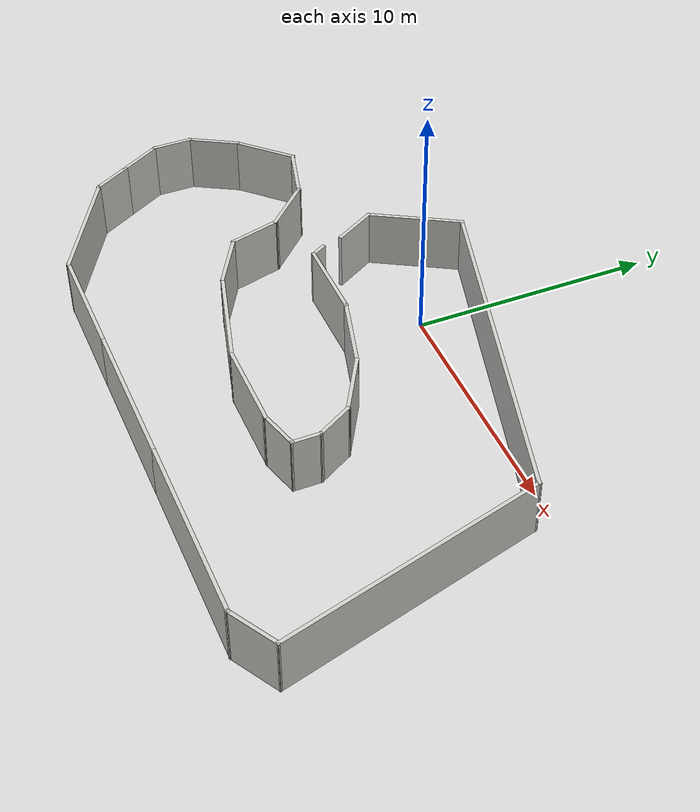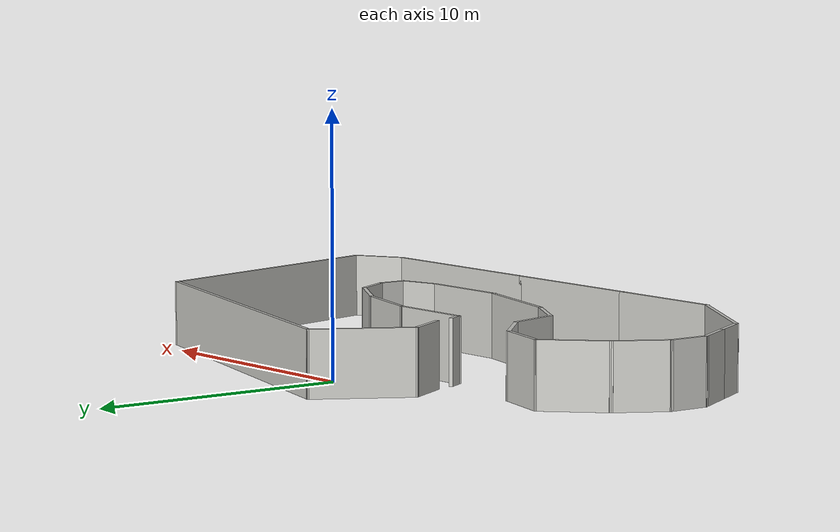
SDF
<?xml version='1.0'?>
<sdf version='1.7'>
  <model name='c-shaped-room-2'>
    <pose>0.960185 -4.80212 0 0 -0 0</pose>
    <link name='Wall_0'>
      <collision name='Wall_0_Collision'>
        <geometry>
          <box>
            <size>0.75 0.15 2.5</size>
          </box>
        </geometry>
        <pose>0 0 1.25 0 -0 0</pose>
      </collision>
      <visual name='Wall_0_Visual'>
        <pose>0 0 1.25 0 -0 0</pose>
        <geometry>
          <box>
            <size>0.75 0.15 2.5</size>
          </box>
        </geometry>
        <material>
          <script>
            <uri>file://media/materials/scripts/gazebo.material</uri>
            <name>Gazebo/CeilingTiled</name>
          </script>
          <ambient>1 1 1 1</ambient>
        </material>
        <meta>
          <layer>0</layer>
        </meta>
      </visual>
      <pose>-4.18018 1.68232 0 0 -0 -1.0472</pose>
    </link>
    <link name='Wall_1'>
      <collision name='Wall_1_Collision'>
        <geometry>
          <box>
            <size>3.5 0.15 2.5</size>
          </box>
        </geometry>
        <pose>0 0 1.25 0 -0 0</pose>
      </collision>
      <visual name='Wall_1_Visual'>
        <pose>0 0 1.25 0 -0 0</pose>
        <geometry>
          <box>
            <size>3.5 0.15 2.5</size>
          </box>
        </geometry>
        <material>
          <script>
            <uri>file://media/materials/scripts/gazebo.material</uri>
            <name>Gazebo/CeilingTiled</name>
          </script>
          <ambient>1 1 1 1</ambient>
        </material>
        <meta>
          <layer>0</layer>
        </meta>
      </visual>
      <pose>-2.35519 1.42251 0 0 -0 0</pose>
    </link>
    <link name='Wall_10'>
      <collision name='Wall_10_Collision'>
        <geometry>
          <box>
            <size>2.25 0.15 2.5</size>
          </box>
        </geometry>
        <pose>0 0 1.25 0 -0 0</pose>
      </collision>
      <visual name='Wall_10_Visual'>
        <pose>0 0 1.25 0 -0 0</pose>
        <geometry>
          <box>
            <size>2.25 0.15 2.5</size>
          </box>
        </geometry>
        <material>
          <script>
            <uri>file://media/materials/scripts/gazebo.material</uri>
            <name>Gazebo/CeilingTiled</name>
          </script>
          <ambient>1 1 1 1</ambient>
        </material>
        <meta>
          <layer>0</layer>
        </meta>
      </visual>
      <pose>-6.28833 -0.264497 0 0 -0 1.8326</pose>
    </link>
    <link name='Wall_11'>
      <collision name='Wall_11_Collision'>
        <geometry>
          <box>
            <size>2.5 0.15 2.5</size>
          </box>
        </geometry>
        <pose>0 0 1.25 0 -0 0</pose>
      </collision>
      <visual name='Wall_11_Visual'>
        <pose>0 0 1.25 0 -0 0</pose>
        <geometry>
          <box>
            <size>2.5 0.15 2.5</size>
          </box>
        </geometry>
        <material>
          <script>
            <uri>file://media/materials/scripts/gazebo.material</uri>
            <name>Gazebo/CeilingTiled</name>
          </script>
          <ambient>1 1 1 1</ambient>
        </material>
        <meta>
          <layer>0</layer>
        </meta>
      </visual>
      <pose>-7.39094 1.58058 0 0 -0 2.35619</pose>
    </link>
    <link name='Wall_12'>
      <collision name='Wall_12_Collision'>
        <geometry>
          <box>
            <size>2.5 0.15 2.5</size>
          </box>
        </geometry>
        <pose>0 0 1.25 0 -0 0</pose>
      </collision>
      <visual name='Wall_12_Visual'>
        <pose>0 0 1.25 0 -0 0</pose>
        <geometry>
          <box>
            <size>2.5 0.15 2.5</size>
          </box>
        </geometry>
        <material>
          <script>
            <uri>file://media/materials/scripts/gazebo.material</uri>
            <name>Gazebo/CeilingTiled</name>
          </script>
          <ambient>1 1 1 1</ambient>
        </material>
        <meta>
          <layer>0</layer>
        </meta>
      </visual>
      <pose>-9.35675 2.71554 0 0 -0 2.87979</pose>
    </link>
    <link name='Wall_13'>
      <collision name='Wall_13_Collision'>
        <geometry>
          <box>
            <size>2.75 0.15 2.5</size>
          </box>
        </geometry>
        <pose>0 0 1.25 0 -0 0</pose>
      </collision>
      <visual name='Wall_13_Visual'>
        <pose>0 0 1.25 0 -0 0</pose>
        <geometry>
          <box>
            <size>2.75 0.15 2.5</size>
          </box>
        </geometry>
        <material>
          <script>
            <uri>file://media/materials/scripts/gazebo.material</uri>
            <name>Gazebo/CeilingTiled</name>
          </script>
          <ambient>1 1 1 1</ambient>
        </material>
        <meta>
          <layer>0</layer>
        </meta>
      </visual>
      <pose>-11.411 2.10041 0 0 -0 -2.35619</pose>
    </link>
    <link name='Wall_14'>
      <collision name='Wall_14_Collision'>
        <geometry>
          <box>
            <size>2.25 0.15 2.5</size>
          </box>
        </geometry>
        <pose>0 0 1.25 0 -0 0</pose>
      </collision>
      <visual name='Wall_14_Visual'>
        <pose>0 0 1.25 0 -0 0</pose>
        <geometry>
          <box>
            <size>2.25 0.15 2.5</size>
          </box>
        </geometry>
        <material>
          <script>
            <uri>file://media/materials/scripts/gazebo.material</uri>
            <name>Gazebo/CeilingTiled</name>
          </script>
          <ambient>1 1 1 1</ambient>
        </material>
        <meta>
          <layer>0</layer>
        </meta>
      </visual>
      <pose>-12.8552 0.271847 0 0 -0 -2.0944</pose>
    </link>
    <link name='Wall_15'>
      <collision name='Wall_15_Collision'>
        <geometry>
          <box>
            <size>1.75 0.15 2.5</size>
          </box>
        </geometry>
        <pose>0 0 1.25 0 -0 0</pose>
      </collision>
      <visual name='Wall_15_Visual'>
        <pose>0 0 1.25 0 -0 0</pose>
        <geometry>
          <box>
            <size>1.75 0.15 2.5</size>
          </box>
        </geometry>
        <material>
          <script>
            <uri>file://media/materials/scripts/gazebo.material</uri>
            <name>Gazebo/CeilingTiled</name>
          </script>
          <ambient>1 1 1 1</ambient>
        </material>
        <meta>
          <layer>0</layer>
        </meta>
      </visual>
      <pose>-13.3802 -1.43748 0 0 -0 -1.5708</pose>
    </link>
    <link name='Wall_16'>
      <collision name='Wall_16_Collision'>
        <geometry>
          <box>
            <size>2 0.15 2.5</size>
          </box>
        </geometry>
        <pose>0 0 1.25 0 -0 0</pose>
      </collision>
      <visual name='Wall_16_Visual'>
        <pose>0 0 1.25 0 -0 0</pose>
        <geometry>
          <box>
            <size>2 0.15 2.5</size>
          </box>
        </geometry>
        <material>
          <script>
            <uri>file://media/materials/scripts/gazebo.material</uri>
            <name>Gazebo/CeilingTiled</name>
          </script>
          <ambient>1 1 1 1</ambient>
        </material>
        <meta>
          <layer>0</layer>
        </meta>
      </visual>
      <pose>-12.9177 -3.03855 0 0 -0 -1.0472</pose>
    </link>
    <link name='Wall_17'>
      <collision name='Wall_17_Collision'>
        <geometry>
          <box>
            <size>1.75 0.15 2.5</size>
          </box>
        </geometry>
        <pose>0 0 1.25 0 -0 0</pose>
      </collision>
      <visual name='Wall_17_Visual'>
        <pose>0 0 1.25 0 -0 0</pose>
        <geometry>
          <box>
            <size>1.75 0.15 2.5</size>
          </box>
        </geometry>
        <material>
          <script>
            <uri>file://media/materials/scripts/gazebo.material</uri>
            <name>Gazebo/CeilingTiled</name>
          </script>
          <ambient>1 1 1 1</ambient>
        </material>
        <meta>
          <layer>0</layer>
        </meta>
      </visual>
      <pose>-12.0552 -4.53245 0 0 -0 -1.0472</pose>
    </link>
    <link name='Wall_18'>
      <collision name='Wall_18_Collision'>
        <geometry>
          <box>
            <size>5.25 0.15 2.5</size>
          </box>
        </geometry>
        <pose>0 0 1.25 0 -0 0</pose>
      </collision>
      <visual name='Wall_18_Visual'>
        <pose>0 0 1.25 0 -0 0</pose>
        <geometry>
          <box>
            <size>5.25 0.15 2.5</size>
          </box>
        </geometry>
        <material>
          <script>
            <uri>file://media/materials/scripts/gazebo.material</uri>
            <name>Gazebo/CeilingTiled</name>
          </script>
          <ambient>1 1 1 1</ambient>
        </material>
        <meta>
          <layer>0</layer>
        </meta>
      </visual>
      <pose>-9.44683 -6.50027 0 0 -0 -0.523599</pose>
    </link>
    <link name='Wall_19'>
      <collision name='Wall_19_Collision'>
        <geometry>
          <box>
            <size>5 0.15 2.5</size>
          </box>
        </geometry>
        <pose>0 0 1.25 0 -0 0</pose>
      </collision>
      <visual name='Wall_19_Visual'>
        <pose>0 0 1.25 0 -0 0</pose>
        <geometry>
          <box>
            <size>5 0.15 2.5</size>
          </box>
        </geometry>
        <material>
          <script>
            <uri>file://media/materials/scripts/gazebo.material</uri>
            <name>Gazebo/CeilingTiled</name>
          </script>
          <ambient>1 1 1 1</ambient>
        </material>
        <meta>
          <layer>0</layer>
        </meta>
      </visual>
      <pose>-4.81346 -7.77527 0 0 -0 0</pose>
    </link>
    <link name='Wall_2'>
      <collision name='Wall_2_Collision'>
        <geometry>
          <box>
            <size>3.25 0.15 2.5</size>
          </box>
        </geometry>
        <pose>0 0 1.25 0 -0 0</pose>
      </collision>
      <visual name='Wall_2_Visual'>
        <pose>0 0 1.25 0 -0 0</pose>
        <geometry>
          <box>
            <size>3.25 0.15 2.5</size>
          </box>
        </geometry>
        <material>
          <script>
            <uri>file://media/materials/scripts/gazebo.material</uri>
            <name>Gazebo/CeilingTiled</name>
          </script>
          <ambient>1 1 1 1</ambient>
        </material>
        <meta>
          <layer>0</layer>
        </meta>
      </visual>
      <pose>0.817 1.02134 0 0 -0 -0.261799</pose>
    </link>
    <link name='Wall_20'>
      <collision name='Wall_20_Collision'>
        <geometry>
          <box>
            <size>6.25 0.15 2.5</size>
          </box>
        </geometry>
        <pose>0 0 1.25 0 -0 0</pose>
      </collision>
      <visual name='Wall_20_Visual'>
        <pose>0 0 1.25 0 -0 0</pose>
        <geometry>
          <box>
            <size>6.25 0.15 2.5</size>
          </box>
        </geometry>
        <material>
          <script>
            <uri>file://media/materials/scripts/gazebo.material</uri>
            <name>Gazebo/CeilingTiled</name>
          </script>
          <ambient>1 1 1 1</ambient>
        </material>
        <meta>
          <layer>0</layer>
        </meta>
      </visual>
      <pose>0.661538 -7.77527 0 0 -0 0</pose>
    </link>
    <link name='Wall_21'>
      <collision name='Wall_21_Collision'>
        <geometry>
          <box>
            <size>8 0.15 2.5</size>
          </box>
        </geometry>
        <pose>0 0 1.25 0 -0 0</pose>
      </collision>
      <visual name='Wall_21_Visual'>
        <pose>0 0 1.25 0 -0 0</pose>
        <geometry>
          <box>
            <size>8 0.15 2.5</size>
          </box>
        </geometry>
        <material>
          <script>
            <uri>file://media/materials/scripts/gazebo.material</uri>
            <name>Gazebo/CeilingTiled</name>
          </script>
          <ambient>1 1 1 1</ambient>
        </material>
        <meta>
          <layer>0</layer>
        </meta>
      </visual>
      <pose>7.63654 -7.77527 0 0 -0 0</pose>
    </link>
    <link name='Wall_22'>
      <collision name='Wall_22_Collision'>
        <geometry>
          <box>
            <size>2.25 0.15 2.5</size>
          </box>
        </geometry>
        <pose>0 0 1.25 0 -0 0</pose>
      </collision>
      <visual name='Wall_22_Visual'>
        <pose>0 0 1.25 0 -0 0</pose>
        <geometry>
          <box>
            <size>2.25 0.15 2.5</size>
          </box>
        </geometry>
        <material>
          <script>
            <uri>file://media/materials/scripts/gazebo.material</uri>
            <name>Gazebo/CeilingTiled</name>
          </script>
          <ambient>1 1 1 1</ambient>
        </material>
        <meta>
          <layer>0</layer>
        </meta>
      </visual>
      <pose>12.4709 -7.25027 0 0 -0 0.523599</pose>
    </link>
    <link name='Wall_23'>
      <collision name='Wall_23_Collision'>
        <geometry>
          <box>
            <size>11.25 0.15 2.5</size>
          </box>
        </geometry>
        <pose>0 0 1.25 0 -0 0</pose>
      </collision>
      <visual name='Wall_23_Visual'>
        <pose>0 0 1.25 0 -0 0</pose>
        <geometry>
          <box>
            <size>11.25 0.15 2.5</size>
          </box>
        </geometry>
        <material>
          <script>
            <uri>file://media/materials/scripts/gazebo.material</uri>
            <name>Gazebo/CeilingTiled</name>
          </script>
          <ambient>1 1 1 1</ambient>
        </material>
        <meta>
          <layer>0</layer>
        </meta>
      </visual>
      <pose>11.9437 -1.36438 0 0 -0 1.8326</pose>
    </link>
    <link name='Wall_24'>
      <collision name='Wall_24_Collision'>
        <geometry>
          <box>
            <size>14.75 0.15 2.5</size>
          </box>
        </geometry>
        <pose>0 0 1.25 0 -0 0</pose>
      </collision>
      <visual name='Wall_24_Visual'>
        <pose>0 0 1.25 0 -0 0</pose>
        <geometry>
          <box>
            <size>14.75 0.15 2.5</size>
          </box>
        </geometry>
        <material>
          <script>
            <uri>file://media/materials/scripts/gazebo.material</uri>
            <name>Gazebo/CeilingTiled</name>
          </script>
          <ambient>1 1 1 1</ambient>
        </material>
        <meta>
          <layer>0</layer>
        </meta>
      </visual>
      <pose>3.45604 5.88589 0 0 -0 2.87979</pose>
    </link>
    <link name='Wall_25'>
      <collision name='Wall_25_Collision'>
        <geometry>
          <box>
            <size>4 0.15 2.5</size>
          </box>
        </geometry>
        <pose>0 0 1.25 0 -0 0</pose>
      </collision>
      <visual name='Wall_25_Visual'>
        <pose>0 0 1.25 0 -0 0</pose>
        <geometry>
          <box>
            <size>4 0.15 2.5</size>
          </box>
        </geometry>
        <material>
          <script>
            <uri>file://media/materials/scripts/gazebo.material</uri>
            <name>Gazebo/CeilingTiled</name>
          </script>
          <ambient>1 1 1 1</ambient>
        </material>
        <meta>
          <layer>0</layer>
        </meta>
      </visual>
      <pose>-4.55772 6.10817 0 0 -0 -2.0944</pose>
    </link>
    <link name='Wall_26'>
      <collision name='Wall_26_Collision'>
        <geometry>
          <box>
            <size>2 0.15 2.5</size>
          </box>
        </geometry>
        <pose>0 0 1.25 0 -0 0</pose>
      </collision>
      <visual name='Wall_26_Visual'>
        <pose>0 0 1.25 0 -0 0</pose>
        <geometry>
          <box>
            <size>2 0.15 2.5</size>
          </box>
        </geometry>
        <material>
          <script>
            <uri>file://media/materials/scripts/gazebo.material</uri>
            <name>Gazebo/CeilingTiled</name>
          </script>
          <ambient>1 1 1 1</ambient>
        </material>
        <meta>
          <layer>0</layer>
        </meta>
      </visual>
      <pose>-5.05772 3.64 0 0 -0 -1.0472</pose>
    </link>
    <link name='Wall_3'>
      <collision name='Wall_3_Collision'>
        <geometry>
          <box>
            <size>2.75 0.15 2.5</size>
          </box>
        </geometry>
        <pose>0 0 1.25 0 -0 0</pose>
      </collision>
      <visual name='Wall_3_Visual'>
        <pose>0 0 1.25 0 -0 0</pose>
        <geometry>
          <box>
            <size>2.75 0.15 2.5</size>
          </box>
        </geometry>
        <material>
          <script>
            <uri>file://media/materials/scripts/gazebo.material</uri>
            <name>Gazebo/CeilingTiled</name>
          </script>
          <ambient>1 1 1 1</ambient>
        </material>
        <meta>
          <layer>0</layer>
        </meta>
      </visual>
      <pose>3.44002 -0.029831 0 0 -0 -0.523599</pose>
    </link>
    <link name='Wall_4'>
      <collision name='Wall_4_Collision'>
        <geometry>
          <box>
            <size>1.75 0.15 2.5</size>
          </box>
        </geometry>
        <pose>0 0 1.25 0 -0 0</pose>
      </collision>
      <visual name='Wall_4_Visual'>
        <pose>0 0 1.25 0 -0 0</pose>
        <geometry>
          <box>
            <size>1.75 0.15 2.5</size>
          </box>
        </geometry>
        <material>
          <script>
            <uri>file://media/materials/scripts/gazebo.material</uri>
            <name>Gazebo/CeilingTiled</name>
          </script>
          <ambient>1 1 1 1</ambient>
        </material>
        <meta>
          <layer>0</layer>
        </meta>
      </visual>
      <pose>4.96585 -1.37265 0 0 -0 -1.0472</pose>
    </link>
    <link name='Wall_5'>
      <collision name='Wall_5_Collision'>
        <geometry>
          <box>
            <size>1.25 0.15 2.5</size>
          </box>
        </geometry>
        <pose>0 0 1.25 0 -0 0</pose>
      </collision>
      <visual name='Wall_5_Visual'>
        <pose>0 0 1.25 0 -0 0</pose>
        <geometry>
          <box>
            <size>1.25 0.15 2.5</size>
          </box>
        </geometry>
        <material>
          <script>
            <uri>file://media/materials/scripts/gazebo.material</uri>
            <name>Gazebo/CeilingTiled</name>
          </script>
          <ambient>1 1 1 1</ambient>
        </material>
        <meta>
          <layer>0</layer>
        </meta>
      </visual>
      <pose>5.36585 -2.61547 0 0 -0 -1.5708</pose>
    </link>
    <link name='Wall_6'>
      <collision name='Wall_6_Collision'>
        <geometry>
          <box>
            <size>1.75 0.15 2.5</size>
          </box>
        </geometry>
        <pose>0 0 1.25 0 -0 0</pose>
      </collision>
      <visual name='Wall_6_Visual'>
        <pose>0 0 1.25 0 -0 0</pose>
        <geometry>
          <box>
            <size>1.75 0.15 2.5</size>
          </box>
        </geometry>
        <material>
          <script>
            <uri>file://media/materials/scripts/gazebo.material</uri>
            <name>Gazebo/CeilingTiled</name>
          </script>
          <ambient>1 1 1 1</ambient>
        </material>
        <meta>
          <layer>0</layer>
        </meta>
      </visual>
      <pose>4.59311 -3.37253 0 0 -0 -2.87979</pose>
    </link>
    <link name='Wall_7'>
      <collision name='Wall_7_Collision'>
        <geometry>
          <box>
            <size>3.75 0.15 2.5</size>
          </box>
        </geometry>
        <pose>0 0 1.25 0 -0 0</pose>
      </collision>
      <visual name='Wall_7_Visual'>
        <pose>0 0 1.25 0 -0 0</pose>
        <geometry>
          <box>
            <size>3.75 0.15 2.5</size>
          </box>
        </geometry>
        <material>
          <script>
            <uri>file://media/materials/scripts/gazebo.material</uri>
            <name>Gazebo/CeilingTiled</name>
          </script>
          <ambient>1 1 1 1</ambient>
        </material>
        <meta>
          <layer>0</layer>
        </meta>
      </visual>
      <pose>2.02037 -3.57958 0 0 -0 3.14159</pose>
    </link>
    <link name='Wall_8'>
      <collision name='Wall_8_Collision'>
        <geometry>
          <box>
            <size>4.5 0.15 2.5</size>
          </box>
        </geometry>
        <pose>0 0 1.25 0 -0 0</pose>
      </collision>
      <visual name='Wall_8_Visual'>
        <pose>0 0 1.25 0 -0 0</pose>
        <geometry>
          <box>
            <size>4.5 0.15 2.5</size>
          </box>
        </geometry>
        <material>
          <script>
            <uri>file://media/materials/scripts/gazebo.material</uri>
            <name>Gazebo/CeilingTiled</name>
          </script>
          <ambient>1 1 1 1</ambient>
        </material>
        <meta>
          <layer>0</layer>
        </meta>
      </visual>
      <pose>-1.88052 -3.01665 0 0 -0 2.87979</pose>
    </link>
    <link name='Wall_9'>
      <collision name='Wall_9_Collision'>
        <geometry>
          <box>
            <size>2.5 0.15 2.5</size>
          </box>
        </geometry>
        <pose>0 0 1.25 0 -0 0</pose>
      </collision>
      <visual name='Wall_9_Visual'>
        <pose>0 0 1.25 0 -0 0</pose>
        <geometry>
          <box>
            <size>2.5 0.15 2.5</size>
          </box>
        </geometry>
        <material>
          <script>
            <uri>file://media/materials/scripts/gazebo.material</uri>
            <name>Gazebo/CeilingTiled</name>
          </script>
          <ambient>1 1 1 1</ambient>
        </material>
        <meta>
          <layer>0</layer>
        </meta>
      </visual>
      <pose>-4.99899 -1.86622 0 0 -0 2.61799</pose>
    </link>
    <static>1</static>
  </model>
</sdf>
